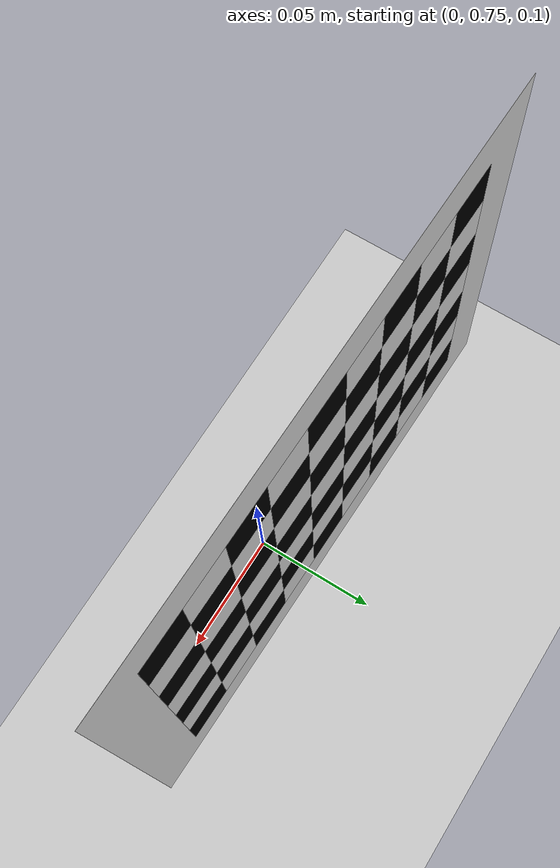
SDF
<sdf version="1.5">
 <world name="default">
  <include><uri>model://sun</uri></include>
  <include><uri>model://ground_plane</uri></include>
  <model name="realsense checkerboard">
   <static>true</static>
   <pose>-0.008021 0.776365 0.201749 3.141584 1.569665 1.551354</pose>
   <link name="realsense_checkerboard_body">
    <visual name="checker_0_0">
     <pose>-0.06 -0.08 0 0 0 0</pose>
     <geometry><box><size>0.02 0.02 0.0002</size></box></geometry>
     <material>
      <ambient>0 0 0 1</ambient>
      <diffuse>0 0 0 1</diffuse>
      <specular>0 0 0 1</specular>
      <emissive>0 0 0 1</emissive>
     </material>
    </visual>
    <visual name="checker_0_1">
     <pose>-0.06 -0.06 0 0 0 0</pose>
     <geometry><box><size>0.02 0.02 0.0002</size></box></geometry>
     <material>
      <ambient>1 1 1 1</ambient>
      <diffuse>1 1 1 1</diffuse>
      <specular>1 1 1 1</specular>
      <emissive>1 1 1 1</emissive>
     </material>
    </visual>
    <visual name="checker_0_2">
     <pose>-0.06 -0.04 0 0 0 0</pose>
     <geometry><box><size>0.02 0.02 0.0002</size></box></geometry>
     <material>
      <ambient>0 0 0 1</ambient>
      <diffuse>0 0 0 1</diffuse>
      <specular>0 0 0 1</specular>
      <emissive>0 0 0 1</emissive>
     </material>
    </visual>
    <visual name="checker_0_3">
     <pose>-0.06 -0.02 0 0 0 0</pose>
     <geometry><box><size>0.02 0.02 0.0002</size></box></geometry>
     <material>
      <ambient>1 1 1 1</ambient>
      <diffuse>1 1 1 1</diffuse>
      <specular>1 1 1 1</specular>
      <emissive>1 1 1 1</emissive>
     </material>
    </visual>
    <visual name="checker_0_4">
     <pose>-0.06 0.0 0 0 0 0</pose>
     <geometry><box><size>0.02 0.02 0.0002</size></box></geometry>
     <material>
      <ambient>0 0 0 1</ambient>
      <diffuse>0 0 0 1</diffuse>
      <specular>0 0 0 1</specular>
      <emissive>0 0 0 1</emissive>
     </material>
    </visual>
    <visual name="checker_0_5">
     <pose>-0.06 0.02 0 0 0 0</pose>
     <geometry><box><size>0.02 0.02 0.0002</size></box></geometry>
     <material>
      <ambient>1 1 1 1</ambient>
      <diffuse>1 1 1 1</diffuse>
      <specular>1 1 1 1</specular>
      <emissive>1 1 1 1</emissive>
     </material>
    </visual>
    <visual name="checker_0_6">
     <pose>-0.06 0.04 0 0 0 0</pose>
     <geometry><box><size>0.02 0.02 0.0002</size></box></geometry>
     <material>
      <ambient>0 0 0 1</ambient>
      <diffuse>0 0 0 1</diffuse>
      <specular>0 0 0 1</specular>
      <emissive>0 0 0 1</emissive>
     </material>
    </visual>
    <visual name="checker_0_7">
     <pose>-0.06 0.06 0 0 0 0</pose>
     <geometry><box><size>0.02 0.02 0.0002</size></box></geometry>
     <material>
      <ambient>1 1 1 1</ambient>
      <diffuse>1 1 1 1</diffuse>
      <specular>1 1 1 1</specular>
      <emissive>1 1 1 1</emissive>
     </material>
    </visual>
    <visual name="checker_0_8">
     <pose>-0.06 0.08 0 0 0 0</pose>
     <geometry><box><size>0.02 0.02 0.0002</size></box></geometry>
     <material>
      <ambient>0 0 0 1</ambient>
      <diffuse>0 0 0 1</diffuse>
      <specular>0 0 0 1</specular>
      <emissive>0 0 0 1</emissive>
     </material>
    </visual>
    <visual name="checker_1_0">
     <pose>-0.04 -0.08 0 0 0 0</pose>
     <geometry><box><size>0.02 0.02 0.0002</size></box></geometry>
     <material>
      <ambient>1 1 1 1</ambient>
      <diffuse>1 1 1 1</diffuse>
      <specular>1 1 1 1</specular>
      <emissive>1 1 1 1</emissive>
     </material>
    </visual>
    <visual name="checker_1_1">
     <pose>-0.04 -0.06 0 0 0 0</pose>
     <geometry><box><size>0.02 0.02 0.0002</size></box></geometry>
     <material>
      <ambient>0 0 0 1</ambient>
      <diffuse>0 0 0 1</diffuse>
      <specular>0 0 0 1</specular>
      <emissive>0 0 0 1</emissive>
     </material>
    </visual>
    <visual name="checker_1_2">
     <pose>-0.04 -0.04 0 0 0 0</pose>
     <geometry><box><size>0.02 0.02 0.0002</size></box></geometry>
     <material>
      <ambient>1 1 1 1</ambient>
      <diffuse>1 1 1 1</diffuse>
      <specular>1 1 1 1</specular>
      <emissive>1 1 1 1</emissive>
     </material>
    </visual>
    <visual name="checker_1_3">
     <pose>-0.04 -0.02 0 0 0 0</pose>
     <geometry><box><size>0.02 0.02 0.0002</size></box></geometry>
     <material>
      <ambient>0 0 0 1</ambient>
      <diffuse>0 0 0 1</diffuse>
      <specular>0 0 0 1</specular>
      <emissive>0 0 0 1</emissive>
     </material>
    </visual>
    <visual name="checker_1_4">
     <pose>-0.04 0.0 0 0 0 0</pose>
     <geometry><box><size>0.02 0.02 0.0002</size></box></geometry>
     <material>
      <ambient>1 1 1 1</ambient>
      <diffuse>1 1 1 1</diffuse>
      <specular>1 1 1 1</specular>
      <emissive>1 1 1 1</emissive>
     </material>
    </visual>
    <visual name="checker_1_5">
     <pose>-0.04 0.02 0 0 0 0</pose>
     <geometry><box><size>0.02 0.02 0.0002</size></box></geometry>
     <material>
      <ambient>0 0 0 1</ambient>
      <diffuse>0 0 0 1</diffuse>
      <specular>0 0 0 1</specular>
      <emissive>0 0 0 1</emissive>
     </material>
    </visual>
    <visual name="checker_1_6">
     <pose>-0.04 0.04 0 0 0 0</pose>
     <geometry><box><size>0.02 0.02 0.0002</size></box></geometry>
     <material>
      <ambient>1 1 1 1</ambient>
      <diffuse>1 1 1 1</diffuse>
      <specular>1 1 1 1</specular>
      <emissive>1 1 1 1</emissive>
     </material>
    </visual>
    <visual name="checker_1_7">
     <pose>-0.04 0.06 0 0 0 0</pose>
     <geometry><box><size>0.02 0.02 0.0002</size></box></geometry>
     <material>
      <ambient>0 0 0 1</ambient>
      <diffuse>0 0 0 1</diffuse>
      <specular>0 0 0 1</specular>
      <emissive>0 0 0 1</emissive>
     </material>
    </visual>
    <visual name="checker_1_8">
     <pose>-0.04 0.08 0 0 0 0</pose>
     <geometry><box><size>0.02 0.02 0.0002</size></box></geometry>
     <material>
      <ambient>1 1 1 1</ambient>
      <diffuse>1 1 1 1</diffuse>
      <specular>1 1 1 1</specular>
      <emissive>1 1 1 1</emissive>
     </material>
    </visual>
    <visual name="checker_2_0">
     <pose>-0.02 -0.08 0 0 0 0</pose>
     <geometry><box><size>0.02 0.02 0.0002</size></box></geometry>
     <material>
      <ambient>0 0 0 1</ambient>
      <diffuse>0 0 0 1</diffuse>
      <specular>0 0 0 1</specular>
      <emissive>0 0 0 1</emissive>
     </material>
    </visual>
    <visual name="checker_2_1">
     <pose>-0.02 -0.06 0 0 0 0</pose>
     <geometry><box><size>0.02 0.02 0.0002</size></box></geometry>
     <material>
      <ambient>1 1 1 1</ambient>
      <diffuse>1 1 1 1</diffuse>
      <specular>1 1 1 1</specular>
      <emissive>1 1 1 1</emissive>
     </material>
    </visual>
    <visual name="checker_2_2">
     <pose>-0.02 -0.04 0 0 0 0</pose>
     <geometry><box><size>0.02 0.02 0.0002</size></box></geometry>
     <material>
      <ambient>0 0 0 1</ambient>
      <diffuse>0 0 0 1</diffuse>
      <specular>0 0 0 1</specular>
      <emissive>0 0 0 1</emissive>
     </material>
    </visual>
    <visual name="checker_2_3">
     <pose>-0.02 -0.02 0 0 0 0</pose>
     <geometry><box><size>0.02 0.02 0.0002</size></box></geometry>
     <material>
      <ambient>1 1 1 1</ambient>
      <diffuse>1 1 1 1</diffuse>
      <specular>1 1 1 1</specular>
      <emissive>1 1 1 1</emissive>
     </material>
    </visual>
    <visual name="checker_2_4">
     <pose>-0.02 0.0 0 0 0 0</pose>
     <geometry><box><size>0.02 0.02 0.0002</size></box></geometry>
     <material>
      <ambient>0 0 0 1</ambient>
      <diffuse>0 0 0 1</diffuse>
      <specular>0 0 0 1</specular>
      <emissive>0 0 0 1</emissive>
     </material>
    </visual>
    <visual name="checker_2_5">
     <pose>-0.02 0.02 0 0 0 0</pose>
     <geometry><box><size>0.02 0.02 0.0002</size></box></geometry>
     <material>
      <ambient>1 1 1 1</ambient>
      <diffuse>1 1 1 1</diffuse>
      <specular>1 1 1 1</specular>
      <emissive>1 1 1 1</emissive>
     </material>
    </visual>
    <visual name="checker_2_6">
     <pose>-0.02 0.04 0 0 0 0</pose>
     <geometry><box><size>0.02 0.02 0.0002</size></box></geometry>
     <material>
      <ambient>0 0 0 1</ambient>
      <diffuse>0 0 0 1</diffuse>
      <specular>0 0 0 1</specular>
      <emissive>0 0 0 1</emissive>
     </material>
    </visual>
    <visual name="checker_2_7">
     <pose>-0.02 0.06 0 0 0 0</pose>
     <geometry><box><size>0.02 0.02 0.0002</size></box></geometry>
     <material>
      <ambient>1 1 1 1</ambient>
      <diffuse>1 1 1 1</diffuse>
      <specular>1 1 1 1</specular>
      <emissive>1 1 1 1</emissive>
     </material>
    </visual>
    <visual name="checker_2_8">
     <pose>-0.02 0.08 0 0 0 0</pose>
     <geometry><box><size>0.02 0.02 0.0002</size></box></geometry>
     <material>
      <ambient>0 0 0 1</ambient>
      <diffuse>0 0 0 1</diffuse>
      <specular>0 0 0 1</specular>
      <emissive>0 0 0 1</emissive>
     </material>
    </visual>
    <visual name="checker_3_0">
     <pose>-1.38777878078e-17 -0.08 0 0 0 0</pose>
     <geometry><box><size>0.02 0.02 0.0002</size></box></geometry>
     <material>
      <ambient>1 1 1 1</ambient>
      <diffuse>1 1 1 1</diffuse>
      <specular>1 1 1 1</specular>
      <emissive>1 1 1 1</emissive>
     </material>
    </visual>
    <visual name="checker_3_1">
     <pose>-1.38777878078e-17 -0.06 0 0 0 0</pose>
     <geometry><box><size>0.02 0.02 0.0002</size></box></geometry>
     <material>
      <ambient>0 0 0 1</ambient>
      <diffuse>0 0 0 1</diffuse>
      <specular>0 0 0 1</specular>
      <emissive>0 0 0 1</emissive>
     </material>
    </visual>
    <visual name="checker_3_2">
     <pose>-1.38777878078e-17 -0.04 0 0 0 0</pose>
     <geometry><box><size>0.02 0.02 0.0002</size></box></geometry>
     <material>
      <ambient>1 1 1 1</ambient>
      <diffuse>1 1 1 1</diffuse>
      <specular>1 1 1 1</specular>
      <emissive>1 1 1 1</emissive>
     </material>
    </visual>
    <visual name="checker_3_3">
     <pose>-1.38777878078e-17 -0.02 0 0 0 0</pose>
     <geometry><box><size>0.02 0.02 0.0002</size></box></geometry>
     <material>
      <ambient>0 0 0 1</ambient>
      <diffuse>0 0 0 1</diffuse>
      <specular>0 0 0 1</specular>
      <emissive>0 0 0 1</emissive>
     </material>
    </visual>
    <visual name="checker_3_4">
     <pose>-1.38777878078e-17 0.0 0 0 0 0</pose>
     <geometry><box><size>0.02 0.02 0.0002</size></box></geometry>
     <material>
      <ambient>1 1 1 1</ambient>
      <diffuse>1 1 1 1</diffuse>
      <specular>1 1 1 1</specular>
      <emissive>1 1 1 1</emissive>
     </material>
    </visual>
    <visual name="checker_3_5">
     <pose>-1.38777878078e-17 0.02 0 0 0 0</pose>
     <geometry><box><size>0.02 0.02 0.0002</size></box></geometry>
     <material>
      <ambient>0 0 0 1</ambient>
      <diffuse>0 0 0 1</diffuse>
      <specular>0 0 0 1</specular>
      <emissive>0 0 0 1</emissive>
     </material>
    </visual>
    <visual name="checker_3_6">
     <pose>-1.38777878078e-17 0.04 0 0 0 0</pose>
     <geometry><box><size>0.02 0.02 0.0002</size></box></geometry>
     <material>
      <ambient>1 1 1 1</ambient>
      <diffuse>1 1 1 1</diffuse>
      <specular>1 1 1 1</specular>
      <emissive>1 1 1 1</emissive>
     </material>
    </visual>
    <visual name="checker_3_7">
     <pose>-1.38777878078e-17 0.06 0 0 0 0</pose>
     <geometry><box><size>0.02 0.02 0.0002</size></box></geometry>
     <material>
      <ambient>0 0 0 1</ambient>
      <diffuse>0 0 0 1</diffuse>
      <specular>0 0 0 1</specular>
      <emissive>0 0 0 1</emissive>
     </material>
    </visual>
    <visual name="checker_3_8">
     <pose>-1.38777878078e-17 0.08 0 0 0 0</pose>
     <geometry><box><size>0.02 0.02 0.0002</size></box></geometry>
     <material>
      <ambient>1 1 1 1</ambient>
      <diffuse>1 1 1 1</diffuse>
      <specular>1 1 1 1</specular>
      <emissive>1 1 1 1</emissive>
     </material>
    </visual>
    <visual name="checker_4_0">
     <pose>0.02 -0.08 0 0 0 0</pose>
     <geometry><box><size>0.02 0.02 0.0002</size></box></geometry>
     <material>
      <ambient>0 0 0 1</ambient>
      <diffuse>0 0 0 1</diffuse>
      <specular>0 0 0 1</specular>
      <emissive>0 0 0 1</emissive>
     </material>
    </visual>
    <visual name="checker_4_1">
     <pose>0.02 -0.06 0 0 0 0</pose>
     <geometry><box><size>0.02 0.02 0.0002</size></box></geometry>
     <material>
      <ambient>1 1 1 1</ambient>
      <diffuse>1 1 1 1</diffuse>
      <specular>1 1 1 1</specular>
      <emissive>1 1 1 1</emissive>
     </material>
    </visual>
    <visual name="checker_4_2">
     <pose>0.02 -0.04 0 0 0 0</pose>
     <geometry><box><size>0.02 0.02 0.0002</size></box></geometry>
     <material>
      <ambient>0 0 0 1</ambient>
      <diffuse>0 0 0 1</diffuse>
      <specular>0 0 0 1</specular>
      <emissive>0 0 0 1</emissive>
     </material>
    </visual>
    <visual name="checker_4_3">
     <pose>0.02 -0.02 0 0 0 0</pose>
     <geometry><box><size>0.02 0.02 0.0002</size></box></geometry>
     <material>
      <ambient>1 1 1 1</ambient>
      <diffuse>1 1 1 1</diffuse>
      <specular>1 1 1 1</specular>
      <emissive>1 1 1 1</emissive>
     </material>
    </visual>
    <visual name="checker_4_4">
     <pose>0.02 0.0 0 0 0 0</pose>
     <geometry><box><size>0.02 0.02 0.0002</size></box></geometry>
     <material>
      <ambient>0 0 0 1</ambient>
      <diffuse>0 0 0 1</diffuse>
      <specular>0 0 0 1</specular>
      <emissive>0 0 0 1</emissive>
     </material>
    </visual>
    <visual name="checker_4_5">
     <pose>0.02 0.02 0 0 0 0</pose>
     <geometry><box><size>0.02 0.02 0.0002</size></box></geometry>
     <material>
      <ambient>1 1 1 1</ambient>
      <diffuse>1 1 1 1</diffuse>
      <specular>1 1 1 1</specular>
      <emissive>1 1 1 1</emissive>
     </material>
    </visual>
    <visual name="checker_4_6">
     <pose>0.02 0.04 0 0 0 0</pose>
     <geometry><box><size>0.02 0.02 0.0002</size></box></geometry>
     <material>
      <ambient>0 0 0 1</ambient>
      <diffuse>0 0 0 1</diffuse>
      <specular>0 0 0 1</specular>
      <emissive>0 0 0 1</emissive>
     </material>
    </visual>
    <visual name="checker_4_7">
     <pose>0.02 0.06 0 0 0 0</pose>
     <geometry><box><size>0.02 0.02 0.0002</size></box></geometry>
     <material>
      <ambient>1 1 1 1</ambient>
      <diffuse>1 1 1 1</diffuse>
      <specular>1 1 1 1</specular>
      <emissive>1 1 1 1</emissive>
     </material>
    </visual>
    <visual name="checker_4_8">
     <pose>0.02 0.08 0 0 0 0</pose>
     <geometry><box><size>0.02 0.02 0.0002</size></box></geometry>
     <material>
      <ambient>0 0 0 1</ambient>
      <diffuse>0 0 0 1</diffuse>
      <specular>0 0 0 1</specular>
      <emissive>0 0 0 1</emissive>
     </material>
    </visual>
    <visual name="checker_5_0">
     <pose>0.04 -0.08 0 0 0 0</pose>
     <geometry><box><size>0.02 0.02 0.0002</size></box></geometry>
     <material>
      <ambient>1 1 1 1</ambient>
      <diffuse>1 1 1 1</diffuse>
      <specular>1 1 1 1</specular>
      <emissive>1 1 1 1</emissive>
     </material>
    </visual>
    <visual name="checker_5_1">
     <pose>0.04 -0.06 0 0 0 0</pose>
     <geometry><box><size>0.02 0.02 0.0002</size></box></geometry>
     <material>
      <ambient>0 0 0 1</ambient>
      <diffuse>0 0 0 1</diffuse>
      <specular>0 0 0 1</specular>
      <emissive>0 0 0 1</emissive>
     </material>
    </visual>
    <visual name="checker_5_2">
     <pose>0.04 -0.04 0 0 0 0</pose>
     <geometry><box><size>0.02 0.02 0.0002</size></box></geometry>
     <material>
      <ambient>1 1 1 1</ambient>
      <diffuse>1 1 1 1</diffuse>
      <specular>1 1 1 1</specular>
      <emissive>1 1 1 1</emissive>
     </material>
    </visual>
    <visual name="checker_5_3">
     <pose>0.04 -0.02 0 0 0 0</pose>
     <geometry><box><size>0.02 0.02 0.0002</size></box></geometry>
     <material>
      <ambient>0 0 0 1</ambient>
      <diffuse>0 0 0 1</diffuse>
      <specular>0 0 0 1</specular>
      <emissive>0 0 0 1</emissive>
     </material>
    </visual>
    <visual name="checker_5_4">
     <pose>0.04 0.0 0 0 0 0</pose>
     <geometry><box><size>0.02 0.02 0.0002</size></box></geometry>
     <material>
      <ambient>1 1 1 1</ambient>
      <diffuse>1 1 1 1</diffuse>
      <specular>1 1 1 1</specular>
      <emissive>1 1 1 1</emissive>
     </material>
    </visual>
    <visual name="checker_5_5">
     <pose>0.04 0.02 0 0 0 0</pose>
     <geometry><box><size>0.02 0.02 0.0002</size></box></geometry>
     <material>
      <ambient>0 0 0 1</ambient>
      <diffuse>0 0 0 1</diffuse>
      <specular>0 0 0 1</specular>
      <emissive>0 0 0 1</emissive>
     </material>
    </visual>
    <visual name="checker_5_6">
     <pose>0.04 0.04 0 0 0 0</pose>
     <geometry><box><size>0.02 0.02 0.0002</size></box></geometry>
     <material>
      <ambient>1 1 1 1</ambient>
      <diffuse>1 1 1 1</diffuse>
      <specular>1 1 1 1</specular>
      <emissive>1 1 1 1</emissive>
     </material>
    </visual>
    <visual name="checker_5_7">
     <pose>0.04 0.06 0 0 0 0</pose>
     <geometry><box><size>0.02 0.02 0.0002</size></box></geometry>
     <material>
      <ambient>0 0 0 1</ambient>
      <diffuse>0 0 0 1</diffuse>
      <specular>0 0 0 1</specular>
      <emissive>0 0 0 1</emissive>
     </material>
    </visual>
    <visual name="checker_5_8">
     <pose>0.04 0.08 0 0 0 0</pose>
     <geometry><box><size>0.02 0.02 0.0002</size></box></geometry>
     <material>
      <ambient>1 1 1 1</ambient>
      <diffuse>1 1 1 1</diffuse>
      <specular>1 1 1 1</specular>
      <emissive>1 1 1 1</emissive>
     </material>
    </visual>
    <visual name="checker_6_0">
     <pose>0.06 -0.08 0 0 0 0</pose>
     <geometry><box><size>0.02 0.02 0.0002</size></box></geometry>
     <material>
      <ambient>0 0 0 1</ambient>
      <diffuse>0 0 0 1</diffuse>
      <specular>0 0 0 1</specular>
      <emissive>0 0 0 1</emissive>
     </material>
    </visual>
    <visual name="checker_6_1">
     <pose>0.06 -0.06 0 0 0 0</pose>
     <geometry><box><size>0.02 0.02 0.0002</size></box></geometry>
     <material>
      <ambient>1 1 1 1</ambient>
      <diffuse>1 1 1 1</diffuse>
      <specular>1 1 1 1</specular>
      <emissive>1 1 1 1</emissive>
     </material>
    </visual>
    <visual name="checker_6_2">
     <pose>0.06 -0.04 0 0 0 0</pose>
     <geometry><box><size>0.02 0.02 0.0002</size></box></geometry>
     <material>
      <ambient>0 0 0 1</ambient>
      <diffuse>0 0 0 1</diffuse>
      <specular>0 0 0 1</specular>
      <emissive>0 0 0 1</emissive>
     </material>
    </visual>
    <visual name="checker_6_3">
     <pose>0.06 -0.02 0 0 0 0</pose>
     <geometry><box><size>0.02 0.02 0.0002</size></box></geometry>
     <material>
      <ambient>1 1 1 1</ambient>
      <diffuse>1 1 1 1</diffuse>
      <specular>1 1 1 1</specular>
      <emissive>1 1 1 1</emissive>
     </material>
    </visual>
    <visual name="checker_6_4">
     <pose>0.06 0.0 0 0 0 0</pose>
     <geometry><box><size>0.02 0.02 0.0002</size></box></geometry>
     <material>
      <ambient>0 0 0 1</ambient>
      <diffuse>0 0 0 1</diffuse>
      <specular>0 0 0 1</specular>
      <emissive>0 0 0 1</emissive>
     </material>
    </visual>
    <visual name="checker_6_5">
     <pose>0.06 0.02 0 0 0 0</pose>
     <geometry><box><size>0.02 0.02 0.0002</size></box></geometry>
     <material>
      <ambient>1 1 1 1</ambient>
      <diffuse>1 1 1 1</diffuse>
      <specular>1 1 1 1</specular>
      <emissive>1 1 1 1</emissive>
     </material>
    </visual>
    <visual name="checker_6_6">
     <pose>0.06 0.04 0 0 0 0</pose>
     <geometry><box><size>0.02 0.02 0.0002</size></box></geometry>
     <material>
      <ambient>0 0 0 1</ambient>
      <diffuse>0 0 0 1</diffuse>
      <specular>0 0 0 1</specular>
      <emissive>0 0 0 1</emissive>
     </material>
    </visual>
    <visual name="checker_6_7">
     <pose>0.06 0.06 0 0 0 0</pose>
     <geometry><box><size>0.02 0.02 0.0002</size></box></geometry>
     <material>
      <ambient>1 1 1 1</ambient>
      <diffuse>1 1 1 1</diffuse>
      <specular>1 1 1 1</specular>
      <emissive>1 1 1 1</emissive>
     </material>
    </visual>
    <visual name="checker_6_8">
     <pose>0.06 0.08 0 0 0 0</pose>
     <geometry><box><size>0.02 0.02 0.0002</size></box></geometry>
     <material>
      <ambient>0 0 0 1</ambient>
      <diffuse>0 0 0 1</diffuse>
      <specular>0 0 0 1</specular>
      <emissive>0 0 0 1</emissive>
     </material>
    </visual>
    <visual name="checker_backdrop">
     <geometry><box><size>0.18 0.22 0.0001</size></box></geometry>
     <material>
      <ambient>1 1 1 1</ambient>
      <diffuse>1 1 1 1</diffuse>
      <specular>1 1 1 1</specular>
      <emissive>1 1 1 1</emissive>
     </material>
    </visual>
   </link>
  </model>
 </world>
</sdf>
